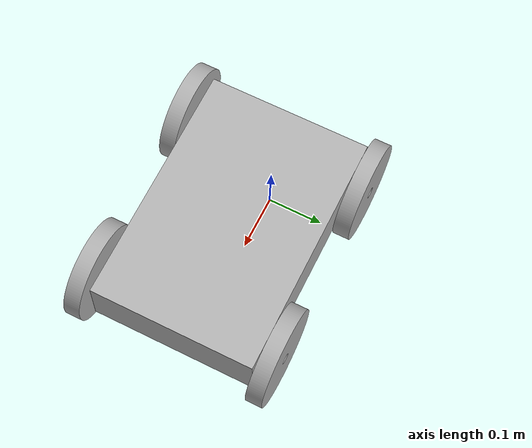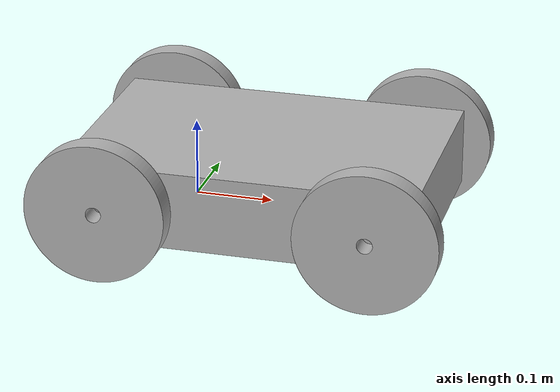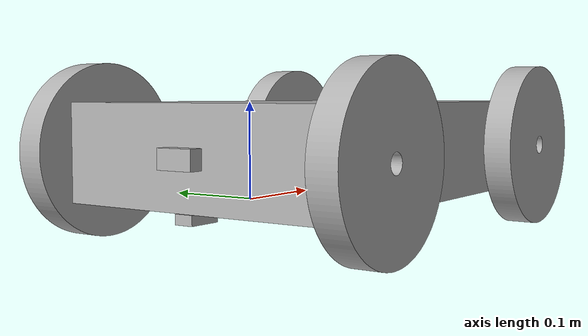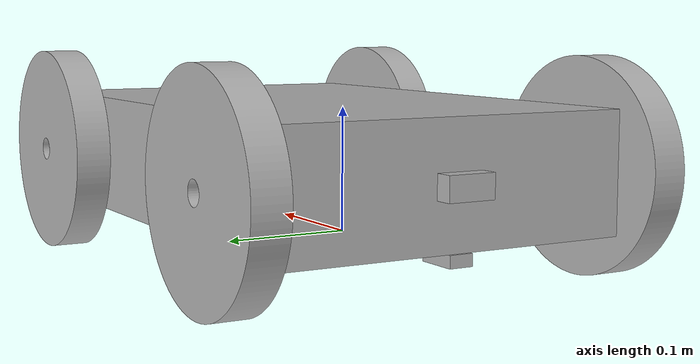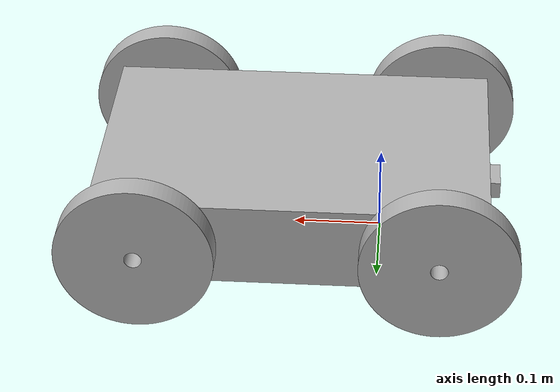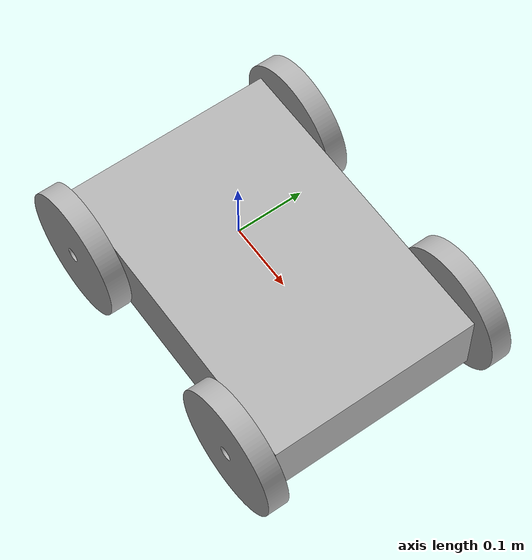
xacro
<?xml version="1.0" ?>
<robot name="trolly_bot" xmlns:xacro="http://www.ros.org/wiki/xacro">

<xacro:include filename="$(find trolly_bot_description)/urdf/materials.xacro" />
<xacro:include filename="$(find trolly_bot_description)/urdf/trolly_bot.trans" />
<xacro:include filename="$(find trolly_bot_description)/urdf/trolly_bot.gazebo" />
<link name="base_link">
  <inertial>
    <origin xyz="0.07499999999999997 -0.02499999999999998 0.024999999999999994" rpy="0 0 0"/>
    <mass value="14.31666017642561"/>
    <inertia ixx="0.119405" iyy="0.253599" izz="0.349154" ixy="-0.0" iyz="0.0" ixz="-0.0"/>
  </inertial>
  <visual>
    <origin xyz="0 0 0" rpy="0 0 0"/>
    <geometry>
      <mesh filename="package://trolly_bot_description/meshes/base_link.stl" scale="0.001 0.001 0.001"/>
    </geometry>
    <material name="silver"/>
  </visual>
  <collision>
    <origin xyz="0 0 0" rpy="0 0 0"/>
    <geometry>
      <mesh filename="package://trolly_bot_description/meshes/base_link.stl" scale="0.001 0.001 0.001"/>
    </geometry>
  </collision>
</link>

<link name="wheel_3_1">
  <inertial>
    <origin xyz="1.2961853812498703e-14 0.014999999999999986 -7.632783294297951e-17" rpy="0 0 0"/>
    <mass value="0.7012034802812414"/>
    <inertia ixx="0.00149" iyy="0.002875" izz="0.00149" ixy="-0.0" iyz="-0.0" ixz="0.0"/>
  </inertial>
  <visual>
    <origin xyz="-0.245 -0.13 -0.025" rpy="0 0 0"/>
    <geometry>
      <mesh filename="package://trolly_bot_description/meshes/wheel_3_1.stl" scale="0.001 0.001 0.001"/>
    </geometry>
    <material name="silver"/>
  </visual>
  <collision>
    <origin xyz="-0.245 -0.13 -0.025" rpy="0 0 0"/>
    <geometry>
      <mesh filename="package://trolly_bot_description/meshes/wheel_3_1.stl" scale="0.001 0.001 0.001"/>
    </geometry>
  </collision>
</link>

<link name="wheel_4_1">
  <inertial>
    <origin xyz="1.3114509478384662e-14 0.014999999999999986 -6.938893903907228e-17" rpy="0 0 0"/>
    <mass value="0.7012034802812414"/>
    <inertia ixx="0.00149" iyy="0.002875" izz="0.00149" ixy="0.0" iyz="-0.0" ixz="-0.0"/>
  </inertial>
  <visual>
    <origin xyz="0.095 -0.13 -0.025" rpy="0 0 0"/>
    <geometry>
      <mesh filename="package://trolly_bot_description/meshes/wheel_4_1.stl" scale="0.001 0.001 0.001"/>
    </geometry>
    <material name="silver"/>
  </visual>
  <collision>
    <origin xyz="0.095 -0.13 -0.025" rpy="0 0 0"/>
    <geometry>
      <mesh filename="package://trolly_bot_description/meshes/wheel_4_1.stl" scale="0.001 0.001 0.001"/>
    </geometry>
  </collision>
</link>

<link name="wheel_1_1">
  <inertial>
    <origin xyz="-1.3183898417423734e-14 -0.01499999999999993 9.020562075079397e-17" rpy="0 0 0"/>
    <mass value="0.7012034802812414"/>
    <inertia ixx="0.00149" iyy="0.002875" izz="0.00149" ixy="0.0" iyz="0.0" ixz="-0.0"/>
  </inertial>
  <visual>
    <origin xyz="-0.245 0.18 -0.025" rpy="0 0 0"/>
    <geometry>
      <mesh filename="package://trolly_bot_description/meshes/wheel_1_1.stl" scale="0.001 0.001 0.001"/>
    </geometry>
    <material name="silver"/>
  </visual>
  <collision>
    <origin xyz="-0.245 0.18 -0.025" rpy="0 0 0"/>
    <geometry>
      <mesh filename="package://trolly_bot_description/meshes/wheel_1_1.stl" scale="0.001 0.001 0.001"/>
    </geometry>
  </collision>
</link>

<link name="wheel_2_1">
  <inertial>
    <origin xyz="-1.301736496372996e-14 -0.01499999999999993 1.0061396160665481e-16" rpy="0 0 0"/>
    <mass value="0.7012034802812414"/>
    <inertia ixx="0.00149" iyy="0.002875" izz="0.00149" ixy="0.0" iyz="-0.0" ixz="0.0"/>
  </inertial>
  <visual>
    <origin xyz="0.095 0.18 -0.025" rpy="0 0 0"/>
    <geometry>
      <mesh filename="package://trolly_bot_description/meshes/wheel_2_1.stl" scale="0.001 0.001 0.001"/>
    </geometry>
    <material name="silver"/>
  </visual>
  <collision>
    <origin xyz="0.095 0.18 -0.025" rpy="0 0 0"/>
    <geometry>
      <mesh filename="package://trolly_bot_description/meshes/wheel_2_1.stl" scale="0.001 0.001 0.001"/>
    </geometry>
  </collision>
</link>

<link name="ultrasonic_1">
  <inertial>
    <origin xyz="-0.007500000000000034 4.163336342344337e-17 2.0816681711721685e-17" rpy="0 0 0"/>
    <mass value="0.012719999999999999"/>
    <inertia ixx="2e-06" iyy="1e-06" izz="2e-06" ixy="-0.0" iyz="-0.0" ixz="-0.0"/>
  </inertial>
  <visual>
    <origin xyz="0.15 0.025 -0.025" rpy="0 0 0"/>
    <geometry>
      <mesh filename="package://trolly_bot_description/meshes/ultrasonic_1.stl" scale="0.001 0.001 0.001"/>
    </geometry>
    <material name="silver"/>
  </visual>
  <collision>
    <origin xyz="0.15 0.025 -0.025" rpy="0 0 0"/>
    <geometry>
      <mesh filename="package://trolly_bot_description/meshes/ultrasonic_1.stl" scale="0.001 0.001 0.001"/>
    </geometry>
  </collision>
</link>

<link name="ir_1">
  <inertial>
    <origin xyz="0.04000000000000001 1.3877787807814457e-17 0.020000000000000007" rpy="0 0 0"/>
    <mass value="0.0074199999999999995"/>
    <inertia ixx="0.0" iyy="1e-06" izz="1e-06" ixy="-0.0" iyz="0.0" ixz="0.0"/>
  </inertial>
  <visual>
    <origin xyz="0.175 0.025 0.05" rpy="0 0 0"/>
    <geometry>
      <mesh filename="package://trolly_bot_description/meshes/ir_1.stl" scale="0.001 0.001 0.001"/>
    </geometry>
    <material name="silver"/>
  </visual>
  <collision>
    <origin xyz="0.175 0.025 0.05" rpy="0 0 0"/>
    <geometry>
      <mesh filename="package://trolly_bot_description/meshes/ir_1.stl" scale="0.001 0.001 0.001"/>
    </geometry>
  </collision>
</link>

<joint name="Revolute 1" type="continuous">
  <origin xyz="0.245 0.13 0.025" rpy="0 0 0"/>
  <parent link="base_link"/>
  <child link="wheel_3_1"/>
  <axis xyz="0.0 1.0 -0.0"/>
</joint>

<joint name="Revolute 2" type="continuous">
  <origin xyz="-0.095 0.13 0.025" rpy="0 0 0"/>
  <parent link="base_link"/>
  <child link="wheel_4_1"/>
  <axis xyz="0.0 1.0 -0.0"/>
</joint>

<joint name="Revolute 3" type="continuous">
  <origin xyz="0.245 -0.18 0.025" rpy="0 0 0"/>
  <parent link="base_link"/>
  <child link="wheel_1_1"/>
  <axis xyz="-0.0 -1.0 0.0"/>
</joint>

<joint name="Revolute 4" type="continuous">
  <origin xyz="-0.095 -0.18 0.025" rpy="0 0 0"/>
  <parent link="base_link"/>
  <child link="wheel_2_1"/>
  <axis xyz="-0.0 -1.0 0.0"/>
</joint>

<joint name="Rigid 5" type="fixed">
  <origin xyz="-0.15 -0.025 0.025" rpy="0 0 0"/>
  <parent link="base_link"/>
  <child link="ultrasonic_1"/>
</joint>

<joint name="Rigid 6" type="fixed">
  <origin xyz="-0.175 -0.025 -0.05" rpy="0 0 0"/>
  <parent link="base_link"/>
  <child link="ir_1"/>
</joint>

</robot>

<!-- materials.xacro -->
<robot name="trolly_bot" xmlns:xacro="http://www.ros.org/wiki/xacro" >

<material name="silver">
  <color rgba="0.700 0.700 0.700 1.000"/>
</material>

</robot>

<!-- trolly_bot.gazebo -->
<robot name="trolly_bot" xmlns:xacro="http://www.ros.org/wiki/xacro" >

<xacro:property name="body_color" value="Gazebo/Silver" />

<gazebo>
  <plugin name="control" filename="libgazebo_ros_control.so"/>
</gazebo>
<gazebo reference="base_link">
  <material>${body_color}</material>
  <mu1>0.2</mu1>
  <mu2>0.2</mu2>
  <selfCollide>true</selfCollide>
  <gravity>true</gravity>
</gazebo>

<gazebo reference="wheel_3_1">
  <material>${body_color}</material>
  <mu1>0.2</mu1>
  <mu2>0.2</mu2>
  <selfCollide>true</selfCollide>
</gazebo>

<gazebo reference="wheel_4_1">
  <material>${body_color}</material>
  <mu1>0.2</mu1>
  <mu2>0.2</mu2>
  <selfCollide>true</selfCollide>
</gazebo>

<gazebo reference="wheel_1_1">
  <material>${body_color}</material>
  <mu1>0.2</mu1>
  <mu2>0.2</mu2>
  <selfCollide>true</selfCollide>
</gazebo>

<gazebo reference="wheel_2_1">
  <material>${body_color}</material>
  <mu1>0.2</mu1>
  <mu2>0.2</mu2>
  <selfCollide>true</selfCollide>
</gazebo>

<gazebo reference="ultrasonic_1">
  <material>${body_color}</material>
  <mu1>0.2</mu1>
  <mu2>0.2</mu2>
  <selfCollide>true</selfCollide>
</gazebo>

<gazebo reference="ir_1">
  <material>${body_color}</material>
  <mu1>0.2</mu1>
  <mu2>0.2</mu2>
  <selfCollide>true</selfCollide>
</gazebo>

</robot>
